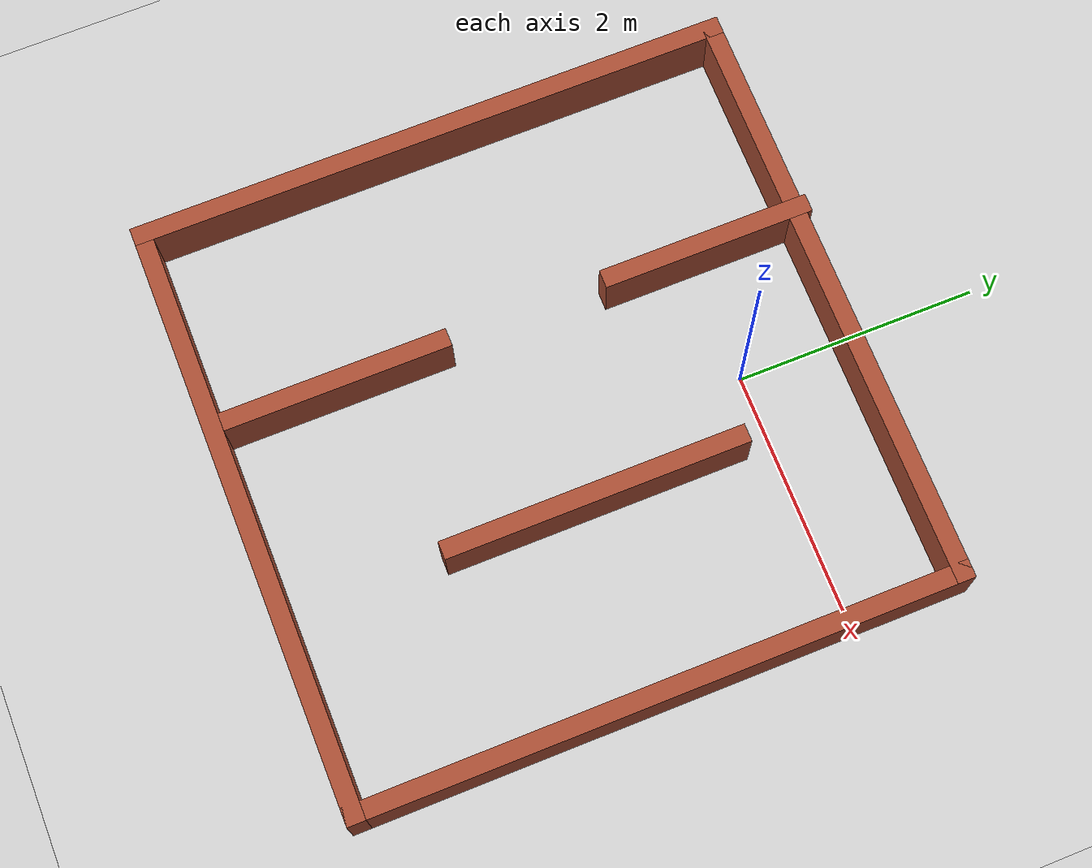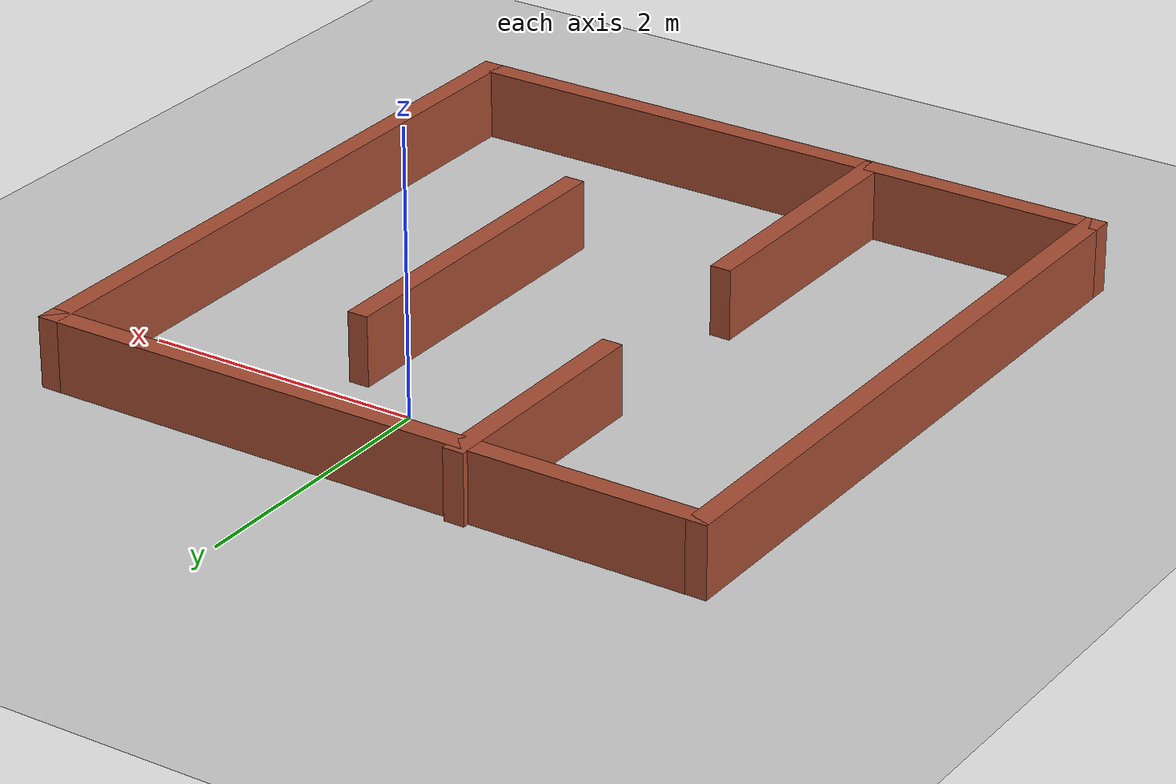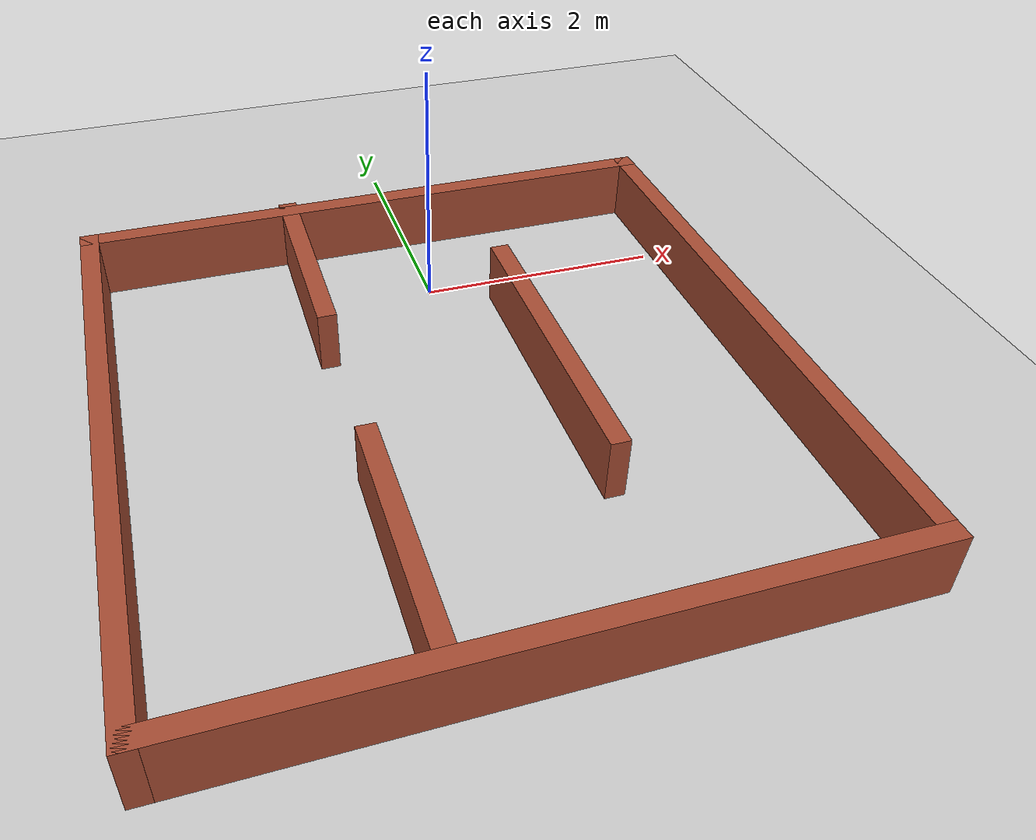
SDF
<sdf version="1.7">
 <world name="default">
  <light name="sun" type="directional">
   <cast_shadows>0</cast_shadows>
   <pose>0 0 10 0 -0 0</pose>
   <diffuse>0.8 0.8 0.8 1</diffuse>
   <specular>0.2 0.2 0.2 1</specular>
   <attenuation>
    <range>1000</range>
    <constant>0.9</constant>
    <linear>0.01</linear>
    <quadratic>0.001</quadratic>
   </attenuation>
   <direction>-0.5 0.1 -0.9</direction>
   <spot><inner_angle>0</inner_angle><outer_angle>0</outer_angle><falloff>0</falloff></spot>
  </light>
  <model name="ground_plane">
   <static>1</static>
   <link name="link">
    <collision name="collision">
     <geometry><plane><normal>0 0 1</normal><size>100 100</size></plane></geometry>
     <surface>
      <contact><collide_bitmask>65535</collide_bitmask></contact>
      <friction><ode><mu>100</mu><mu2>50</mu2></ode></friction>
     </surface>
    </collision>
    <visual name="visual">
     <cast_shadows>0</cast_shadows>
     <geometry><plane><normal>0 0 1</normal><size>100 100</size></plane></geometry>
     <material>
      <script><uri>file://media/materials/scripts/gazebo.material</uri><name>Gazebo/Grey</name></script>
     </material>
    </visual>
   </link>
  </model>
  <gravity>0 0 -9.8</gravity>
  <magnetic_field>6e-06 2.3e-05 -4.2e-05</magnetic_field>
  <atmosphere type="adiabatic"/>
  <physics type="ode">
   <max_step_size>0.001</max_step_size>
   <real_time_factor>1</real_time_factor>
   <real_time_update_rate>1000</real_time_update_rate>
  </physics>
  <scene><ambient>0.4 0.4 0.4 1</ambient><background>0.7 0.7 0.7 1</background><shadows>1</shadows></scene>
  <spherical_coordinates>
   <surface_model>EARTH_WGS84</surface_model>
   <latitude_deg>0</latitude_deg>
   <longitude_deg>0</longitude_deg>
   <elevation>0</elevation>
   <heading_deg>0</heading_deg>
  </spherical_coordinates>
  <model name="Untitled">
   <pose>-0.285 -1.54255 0 0 -0 0</pose>
   <link name="Wall_0">
    <collision name="Wall_0_Collision">
     <geometry><box><size>5 0.15 0.5</size></box></geometry>
     <pose>0 0 0.25 0 -0 0</pose>
    </collision>
    <visual name="Wall_0_Visual">
     <pose>0 0 0.25 0 -0 0</pose>
     <geometry><box><size>5 0.15 0.5</size></box></geometry>
     <material>
      <script><uri>file://media/materials/scripts/gazebo.material</uri><name>Gazebo/Bricks</name></script>
      <ambient>1 1 1 1</ambient>
     </material>
     <meta><layer>0</layer></meta>
    </visual>
    <pose>-2.425 -0.022448 0 0 -0 1.5708</pose>
   </link>
   <link name="Wall_1">
    <collision name="Wall_1_Collision">
     <geometry><box><size>5 0.15 0.5</size></box></geometry>
     <pose>0 0 0.25 0 -0 0</pose>
    </collision>
    <visual name="Wall_1_Visual">
     <pose>0 0 0.25 0 -0 0</pose>
     <geometry><box><size>5 0.15 0.5</size></box></geometry>
     <material>
      <script><uri>file://media/materials/scripts/gazebo.material</uri><name>Gazebo/Bricks</name></script>
      <ambient>1 1 1 1</ambient>
     </material>
     <meta><layer>0</layer></meta>
    </visual>
    <pose>-0 2.40255 0 0 -0 0</pose>
   </link>
   <link name="Wall_10">
    <collision name="Wall_10_Collision">
     <geometry><box><size>2.5 0.15 0.5</size></box></geometry>
     <pose>0 0 0.25 0 -0 0</pose>
    </collision>
    <visual name="Wall_10_Visual">
     <pose>0 0 0.25 0 -0 0</pose>
     <geometry><box><size>2.5 0.15 0.5</size></box></geometry>
     <material>
      <script><uri>file://media/materials/scripts/gazebo.material</uri><name>Gazebo/Bricks</name></script>
      <ambient>1 1 1 1</ambient>
     </material>
     <meta><layer>0</layer></meta>
    </visual>
    <pose>0.831727 0.086166 0 0 -0 -1.5708</pose>
   </link>
   <link name="Wall_2">
    <collision name="Wall_2_Collision">
     <geometry><box><size>5 0.15 0.5</size></box></geometry>
     <pose>0 0 0.25 0 -0 0</pose>
    </collision>
    <visual name="Wall_2_Visual">
     <pose>0 0 0.25 0 -0 0</pose>
     <geometry><box><size>5 0.15 0.5</size></box></geometry>
     <material>
      <script><uri>file://media/materials/scripts/gazebo.material</uri><name>Gazebo/Bricks</name></script>
      <ambient>1 1 1 1</ambient>
     </material>
     <meta><layer>0</layer></meta>
    </visual>
    <pose>2.425 -0.022448 0 0 -0 -1.5708</pose>
   </link>
   <link name="Wall_3">
    <collision name="Wall_3_Collision">
     <geometry><box><size>5 0.15 0.5</size></box></geometry>
     <pose>0 0 0.25 0 -0 0</pose>
    </collision>
    <visual name="Wall_3_Visual">
     <pose>0 0 0.25 0 -0 0</pose>
     <geometry><box><size>5 0.15 0.5</size></box></geometry>
     <material>
      <script><uri>file://media/materials/scripts/gazebo.material</uri><name>Gazebo/Bricks</name></script>
      <ambient>1 1 1 1</ambient>
     </material>
     <meta><layer>0</layer></meta>
    </visual>
    <pose>-0 -2.44745 0 0 -0 3.14159</pose>
   </link>
   <link name="Wall_5">
    <collision name="Wall_5_Collision">
     <geometry><box><size>2 0.15 0.5</size></box></geometry>
     <pose>0 0 0.25 0 -0 0</pose>
    </collision>
    <visual name="Wall_5_Visual">
     <pose>0 0 0.25 0 -0 0</pose>
     <geometry><box><size>2 0.15 0.5</size></box></geometry>
     <material>
      <script><uri>file://media/materials/scripts/gazebo.material</uri><name>Gazebo/Bricks</name></script>
      <ambient>1 1 1 1</ambient>
     </material>
     <meta><layer>0</layer></meta>
    </visual>
    <pose>-0.734774 -1.50956 0 0 -0 1.5708</pose>
   </link>
   <link name="Wall_8">
    <collision name="Wall_8_Collision">
     <geometry><box><size>1.75 0.15 0.5</size></box></geometry>
     <pose>0 0 0.25 0 -0 0</pose>
    </collision>
    <visual name="Wall_8_Visual">
     <pose>0 0 0.25 0 -0 0</pose>
     <geometry><box><size>1.75 0.15 0.5</size></box></geometry>
     <material>
      <script><uri>file://media/materials/scripts/gazebo.material</uri><name>Gazebo/Bricks</name></script>
      <ambient>1 1 1 1</ambient>
     </material>
     <meta><layer>0</layer></meta>
    </visual>
    <pose>-0.734774 1.64745 0 0 -0 -1.5708</pose>
   </link>
   <static>1</static>
  </model>
 </world>
</sdf>
